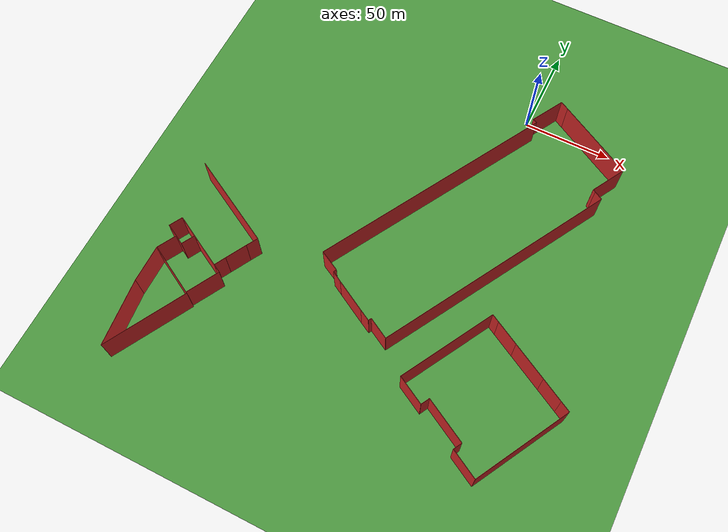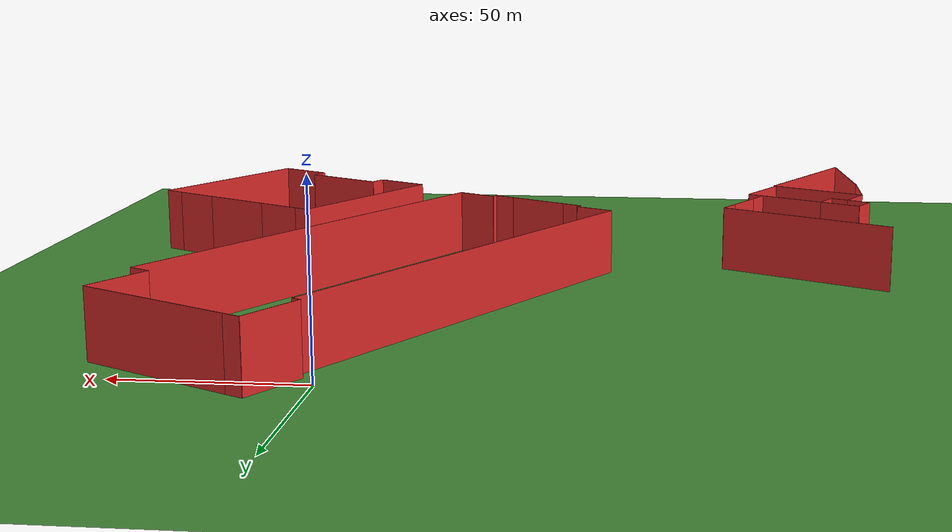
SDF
<sdf version="1.4">
 <world name="default">
  <model name="ground">
   <static>true</static>
   <link name="link">
    <collision name="collision">
     <geometry><plane><size>10000 10000</size><normal>0 0 1</normal></plane></geometry>
     <surface><friction><ode><mu>100</mu><mu2>50</mu2></ode></friction></surface>
    </collision>
    <visual name="visual">
     <pose>0 0 -1 0 0 0</pose>
     <geometry><plane><normal>0 0 1</normal><size>10000 10000</size></plane></geometry>
     <material>
      <script><uri>file://media/materials/scripts/gazebo.material</uri><name>Gazebo/Grass</name></script>
     </material>
    </visual>
   </link>
  </model>
  <include><uri>model://sun</uri></include>
  <model name="office_building_266170727">
   <static>true</static>
   <pose>-140.270672427 -159.703552086 0.0 0 0 0</pose>
   <link name="office_building_266170727_0">
    <collision name="office_building_266170727_0">
     <geometry><box><size>7.49950152143 0.2 20.0</size></box></geometry>
    </collision>
    <visual name="office_building_266170727_0">
     <geometry><box><size>7.49950152143 0.2 20.0</size></box></geometry>
     <material>
      <script><uri>file://media/materials/scripts/gazebo.material</uri><name>Gazebo/Red</name></script>
     </material>
    </visual>
    <pose>0.772717943705 3.97133875865 9.0 0 0 2.63889161114</pose>
   </link>
   <link name="office_building_266170727_1">
    <collision name="office_building_266170727_1">
     <geometry><box><size>11.5570125355 0.2 20.0</size></box></geometry>
    </collision>
    <visual name="office_building_266170727_1">
     <geometry><box><size>11.5570125355 0.2 20.0</size></box></geometry>
     <material>
      <script><uri>file://media/materials/scripts/gazebo.material</uri><name>Gazebo/Red</name></script>
     </material>
    </visual>
    <pose>1.25656510116 -2.88897341572 9.0 0 0 1.06454685184</pose>
   </link>
  </model>
  <model name="office_building_266170728">
   <static>true</static>
   <pose>-141.737771603 -188.416706021 0.0 0 0 0</pose>
  </model>
  <model name="One Rockefeller Plaza">
   <static>true</static>
   <pose>-121.06339997 -146.540523156 0.0 0 0 0</pose>
   <link name="One Rockefeller Plaza_0">
    <collision name="One Rockefeller Plaza_0">
     <geometry><box><size>55.0279759468 0.2 20.0</size></box></geometry>
    </collision>
    <visual name="One Rockefeller Plaza_0">
     <geometry><box><size>55.0279759468 0.2 20.0</size></box></geometry>
     <material>
      <script><uri>file://media/materials/scripts/gazebo.material</uri><name>Gazebo/Red</name></script>
     </material>
    </visual>
    <pose>-0.0934985381491 20.0861033182 9.0 0 0 2.63868104281</pose>
   </link>
   <link name="One Rockefeller Plaza_1">
    <collision name="One Rockefeller Plaza_1">
     <geometry><box><size>7.01766590158 0.2 20.0</size></box></geometry>
    </collision>
    <visual name="One Rockefeller Plaza_1">
     <geometry><box><size>7.01766590158 0.2 20.0</size></box></geometry>
     <material>
      <script><uri>file://media/materials/scripts/gazebo.material</uri><name>Gazebo/Red</name></script>
     </material>
    </visual>
    <pose>22.2847662936 3.77168856766 9.0 0 0 1.05553445254</pose>
   </link>
   <link name="One Rockefeller Plaza_2">
    <collision name="One Rockefeller Plaza_2">
     <geometry><box><size>12.5274177601 0.2 20.0</size></box></geometry>
    </collision>
    <visual name="One Rockefeller Plaza_2">
     <geometry><box><size>12.5274177601 0.2 20.0</size></box></geometry>
     <material>
      <script><uri>file://media/materials/scripts/gazebo.material</uri><name>Gazebo/Red</name></script>
     </material>
    </visual>
    <pose>17.5202348095 -4.76059708165 9.0 0 0 1.06486932209</pose>
   </link>
   <link name="One Rockefeller Plaza_3">
    <collision name="One Rockefeller Plaza_3">
     <geometry><box><size>6.91266604179 0.2 20.0</size></box></geometry>
    </collision>
    <visual name="One Rockefeller Plaza_3">
     <geometry><box><size>6.91266604179 0.2 20.0</size></box></geometry>
     <material>
      <script><uri>file://media/materials/scripts/gazebo.material</uri><name>Gazebo/Red</name></script>
     </material>
    </visual>
    <pose>12.8335464521 -13.2760435348 9.0 0 0 1.07273229349</pose>
   </link>
   <link name="One Rockefeller Plaza_4">
    <collision name="One Rockefeller Plaza_4">
     <geometry><box><size>20.1756515669 0.2 20.0</size></box></geometry>
    </collision>
    <visual name="One Rockefeller Plaza_4">
     <geometry><box><size>20.1756515669 0.2 20.0</size></box></geometry>
     <material>
      <script><uri>file://media/materials/scripts/gazebo.material</uri><name>Gazebo/Red</name></script>
     </material>
    </visual>
    <pose>2.34226689663 -11.452746225 9.0 0 0 -0.502640127612</pose>
   </link>
   <link name="One Rockefeller Plaza_5">
    <collision name="One Rockefeller Plaza_5">
     <geometry><box><size>12.9221664265 0.2 20.0</size></box></geometry>
    </collision>
    <visual name="One Rockefeller Plaza_5">
     <geometry><box><size>12.9221664265 0.2 20.0</size></box></geometry>
     <material>
      <script><uri>file://media/materials/scripts/gazebo.material</uri><name>Gazebo/Red</name></script>
     </material>
    </visual>
    <pose>-12.1577186627 -3.4767334685 9.0 0 0 -0.503298710684</pose>
   </link>
   <link name="One Rockefeller Plaza_6">
    <collision name="One Rockefeller Plaza_6">
     <geometry><box><size>8.0360105564 0.2 20.0</size></box></geometry>
    </collision>
    <visual name="One Rockefeller Plaza_6">
     <geometry><box><size>8.0360105564 0.2 20.0</size></box></geometry>
     <material>
      <script><uri>file://media/materials/scripts/gazebo.material</uri><name>Gazebo/Red</name></script>
     </material>
    </visual>
    <pose>-19.769003168 -3.87276001151 9.0 0 0 1.06367401197</pose>
   </link>
  </model>
  <model name="Associated Press Building">
   <static>true</static>
   <pose>46.6651881996 -161.535641464 0.0 0 0 0</pose>
   <link name="Associated Press Building_0">
    <collision name="Associated Press Building_0">
     <geometry><box><size>56.9724095954 0.2 20.0</size></box></geometry>
    </collision>
    <visual name="Associated Press Building_0">
     <geometry><box><size>56.9724095954 0.2 20.0</size></box></geometry>
     <material>
      <script><uri>file://media/materials/scripts/gazebo.material</uri><name>Gazebo/Red</name></script>
     </material>
    </visual>
    <pose>23.3953563574 -16.2886308355 9.0 0 0 1.06400436703</pose>
   </link>
   <link name="Associated Press Building_1">
    <collision name="Associated Press Building_1">
     <geometry><box><size>17.3436676433 0.2 20.0</size></box></geometry>
    </collision>
    <visual name="Associated Press Building_1">
     <geometry><box><size>17.3436676433 0.2 20.0</size></box></geometry>
     <material>
      <script><uri>file://media/materials/scripts/gazebo.material</uri><name>Gazebo/Red</name></script>
     </material>
    </visual>
    <pose>1.9741404787 -37.0085034013 9.0 0 0 -0.503721360704</pose>
   </link>
   <link name="Associated Press Building_2">
    <collision name="Associated Press Building_2">
     <geometry><box><size>5.12653527383 0.2 20.0</size></box></geometry>
    </collision>
    <visual name="Associated Press Building_2">
     <geometry><box><size>5.12653527383 0.2 20.0</size></box></geometry>
     <material>
      <script><uri>file://media/materials/scripts/gazebo.material</uri><name>Gazebo/Red</name></script>
     </material>
    </visual>
    <pose>-4.37526050518 -30.5822875928 9.0 0 0 -2.07811448029</pose>
   </link>
   <link name="Associated Press Building_3">
    <collision name="Associated Press Building_3">
     <geometry><box><size>26.4579946325 0.2 20.0</size></box></geometry>
    </collision>
    <visual name="Associated Press Building_3">
     <geometry><box><size>26.4579946325 0.2 20.0</size></box></geometry>
     <material>
      <script><uri>file://media/materials/scripts/gazebo.material</uri><name>Gazebo/Red</name></script>
     </material>
    </visual>
    <pose>-14.7166054037 -21.9578623385 9.0 0 0 -0.50359373156</pose>
   </link>
   <link name="Associated Press Building_4">
    <collision name="Associated Press Building_4">
     <geometry><box><size>5.14864710983 0.2 20.0</size></box></geometry>
    </collision>
    <visual name="Associated Press Building_4">
     <geometry><box><size>5.14864710983 0.2 20.0</size></box></geometry>
     <material>
      <script><uri>file://media/materials/scripts/gazebo.material</uri><name>Gazebo/Red</name></script>
     </material>
    </visual>
    <pose>-27.548603754 -17.8269269454 9.0 0 0 1.06586218671</pose>
   </link>
   <link name="Associated Press Building_5">
    <collision name="Associated Press Building_5">
     <geometry><box><size>17.1861757277 0.2 20.0</size></box></geometry>
    </collision>
    <visual name="Associated Press Building_5">
     <geometry><box><size>17.1861757277 0.2 20.0</size></box></geometry>
     <material>
      <script><uri>file://media/materials/scripts/gazebo.material</uri><name>Gazebo/Red</name></script>
     </material>
    </visual>
    <pose>-36.3219282879 -15.9362688912 9.0 0 0 -0.503182204523</pose>
   </link>
   <link name="Associated Press Building_6">
    <collision name="Associated Press Building_6">
     <geometry><box><size>57.0002131066 0.2 20.0</size></box></geometry>
    </collision>
    <visual name="Associated Press Building_6">
     <geometry><box><size>57.0002131066 0.2 20.0</size></box></geometry>
     <material>
      <script><uri>file://media/materials/scripts/gazebo.material</uri><name>Gazebo/Red</name></script>
     </material>
    </visual>
    <pose>-30.017775761 13.1258751468 9.0 0 0 -2.07754458513</pose>
   </link>
   <link name="Associated Press Building_7">
    <collision name="Associated Press Building_7">
     <geometry><box><size>4.76175828055 0.2 20.0</size></box></geometry>
    </collision>
    <visual name="Associated Press Building_7">
     <geometry><box><size>4.76175828055 0.2 20.0</size></box></geometry>
     <material>
      <script><uri>file://media/materials/scripts/gazebo.material</uri><name>Gazebo/Red</name></script>
     </material>
    </visual>
    <pose>-14.1007029444 36.8946550285 9.0 0 0 2.63766986015</pose>
   </link>
   <link name="Associated Press Building_8">
    <collision name="Associated Press Building_8">
     <geometry><box><size>14.2852710823 0.2 20.0</size></box></geometry>
    </collision>
    <visual name="Associated Press Building_8">
     <geometry><box><size>14.2852710823 0.2 20.0</size></box></geometry>
     <material>
      <script><uri>file://media/materials/scripts/gazebo.material</uri><name>Gazebo/Red</name></script>
     </material>
    </visual>
    <pose>-5.76100375379 32.2960955477 9.0 0 0 2.63767095937</pose>
   </link>
   <link name="Associated Press Building_9">
    <collision name="Associated Press Building_9">
     <geometry><box><size>21.8318023266 0.2 20.0</size></box></geometry>
    </collision>
    <visual name="Associated Press Building_9">
     <geometry><box><size>21.8318023266 0.2 20.0</size></box></geometry>
     <material>
      <script><uri>file://media/materials/scripts/gazebo.material</uri><name>Gazebo/Red</name></script>
     </material>
    </visual>
    <pose>10.0566331134 23.5832848595 9.0 0 0 2.63840276131</pose>
   </link>
   <link name="Associated Press Building_10">
    <collision name="Associated Press Building_10">
     <geometry><box><size>13.8801247236 0.2 20.0</size></box></geometry>
    </collision>
    <visual name="Associated Press Building_10">
     <geometry><box><size>13.8801247236 0.2 20.0</size></box></geometry>
     <material>
      <script><uri>file://media/materials/scripts/gazebo.material</uri><name>Gazebo/Red</name></script>
     </material>
    </visual>
    <pose>25.6963642635 14.9673586972 9.0 0 0 2.63751781806</pose>
   </link>
   <link name="Associated Press Building_11">
    <collision name="Associated Press Building_11">
     <geometry><box><size>6.21909529223 0.2 20.0</size></box></geometry>
    </collision>
    <visual name="Associated Press Building_11">
     <geometry><box><size>6.21909529223 0.2 20.0</size></box></geometry>
     <material>
      <script><uri>file://media/materials/scripts/gazebo.material</uri><name>Gazebo/Red</name></script>
     </material>
    </visual>
    <pose>34.4975398909 10.1161787611 9.0 0 0 2.63853014016</pose>
   </link>
  </model>
  <model name="30 Rockefeller Plaza">
   <static>true</static>
   <pose>-6.26016364694 -83.3452475367 0.0 0 0 0</pose>
   <link name="30 Rockefeller Plaza_0">
    <collision name="30 Rockefeller Plaza_0">
     <geometry><box><size>12.4482823457 0.2 20.0</size></box></geometry>
    </collision>
    <visual name="30 Rockefeller Plaza_0">
     <geometry><box><size>12.4482823457 0.2 20.0</size></box></geometry>
     <material>
      <script><uri>file://media/materials/scripts/gazebo.material</uri><name>Gazebo/Red</name></script>
     </material>
    </visual>
    <pose>-51.0484838996 -50.7895727292 9.0 0 0 2.65204286307</pose>
   </link>
   <link name="30 Rockefeller Plaza_1">
    <collision name="30 Rockefeller Plaza_1">
     <geometry><box><size>1.82901620282 0.2 20.0</size></box></geometry>
    </collision>
    <visual name="30 Rockefeller Plaza_1">
     <geometry><box><size>1.82901620282 0.2 20.0</size></box></geometry>
     <material>
      <script><uri>file://media/materials/scripts/gazebo.material</uri><name>Gazebo/Red</name></script>
     </material>
    </visual>
    <pose>-46.0057260187 -54.5122897018 9.0 0 0 1.05592511031</pose>
   </link>
   <link name="30 Rockefeller Plaza_2">
    <collision name="30 Rockefeller Plaza_2">
     <geometry><box><size>6.48143917615 0.2 20.0</size></box></geometry>
    </collision>
    <visual name="30 Rockefeller Plaza_2">
     <geometry><box><size>6.48143917615 0.2 20.0</size></box></geometry>
     <material>
      <script><uri>file://media/materials/scripts/gazebo.material</uri><name>Gazebo/Red</name></script>
     </material>
    </visual>
    <pose>-43.642788456 -56.9169075212 9.0 0 0 2.62215405734</pose>
   </link>
   <link name="30 Rockefeller Plaza_3">
    <collision name="30 Rockefeller Plaza_3">
     <geometry><box><size>19.2327523893 0.2 20.0</size></box></geometry>
    </collision>
    <visual name="30 Rockefeller Plaza_3">
     <geometry><box><size>19.2327523893 0.2 20.0</size></box></geometry>
     <material>
      <script><uri>file://media/materials/scripts/gazebo.material</uri><name>Gazebo/Red</name></script>
     </material>
    </visual>
    <pose>-32.4397758757 -63.2252349427 9.0 0 0 2.63097756929</pose>
   </link>
   <link name="30 Rockefeller Plaza_4">
    <collision name="30 Rockefeller Plaza_4">
     <geometry><box><size>6.57648159721 0.2 20.0</size></box></geometry>
    </collision>
    <visual name="30 Rockefeller Plaza_4">
     <geometry><box><size>6.57648159721 0.2 20.0</size></box></geometry>
     <material>
      <script><uri>file://media/materials/scripts/gazebo.material</uri><name>Gazebo/Red</name></script>
     </material>
    </visual>
    <pose>-21.1589249814 -69.4914380241 9.0 0 0 2.64502738124</pose>
   </link>
   <link name="30 Rockefeller Plaza_5">
    <collision name="30 Rockefeller Plaza_5">
     <geometry><box><size>1.82901091886 0.2 20.0</size></box></geometry>
    </collision>
    <visual name="30 Rockefeller Plaza_5">
     <geometry><box><size>1.82901091886 0.2 20.0</size></box></geometry>
     <material>
      <script><uri>file://media/materials/scripts/gazebo.material</uri><name>Gazebo/Red</name></script>
     </material>
    </visual>
    <pose>-17.8175015844 -70.2620380869 9.0 0 0 -2.08566704631</pose>
   </link>
   <link name="30 Rockefeller Plaza_6">
    <collision name="30 Rockefeller Plaza_6">
     <geometry><box><size>12.7486341534 0.2 20.0</size></box></geometry>
    </collision>
    <visual name="30 Rockefeller Plaza_6">
     <geometry><box><size>12.7486341534 0.2 20.0</size></box></geometry>
     <material>
      <script><uri>file://media/materials/scripts/gazebo.material</uri><name>Gazebo/Red</name></script>
     </material>
    </visual>
    <pose>-11.801807035 -72.5739142794 9.0 0 0 2.63230697993</pose>
   </link>
   <link name="30 Rockefeller Plaza_7">
    <collision name="30 Rockefeller Plaza_7">
     <geometry><box><size>139.764679506 0.2 20.0</size></box></geometry>
    </collision>
    <visual name="30 Rockefeller Plaza_7">
     <geometry><box><size>139.764679506 0.2 20.0</size></box></geometry>
     <material>
      <script><uri>file://media/materials/scripts/gazebo.material</uri><name>Gazebo/Red</name></script>
     </material>
    </visual>
    <pose>28.0608313091 -14.7946364759 9.0 0 0 -2.08378785187</pose>
   </link>
   <link name="30 Rockefeller Plaza_8">
    <collision name="30 Rockefeller Plaza_8">
     <geometry><box><size>5.18590951795 0.2 20.0</size></box></geometry>
    </collision>
    <visual name="30 Rockefeller Plaza_8">
     <geometry><box><size>5.18590951795 0.2 20.0</size></box></geometry>
     <material>
      <script><uri>file://media/materials/scripts/gazebo.material</uri><name>Gazebo/Red</name></script>
     </material>
    </visual>
    <pose>60.1008347938 47.3684636331 9.0 0 0 -0.514503693052</pose>
   </link>
   <link name="30 Rockefeller Plaza_9">
    <collision name="30 Rockefeller Plaza_9">
     <geometry><box><size>1.64814576318 0.2 20.0</size></box></geometry>
    </collision>
    <visual name="30 Rockefeller Plaza_9">
     <geometry><box><size>1.64814576318 0.2 20.0</size></box></geometry>
     <material>
      <script><uri>file://media/materials/scripts/gazebo.material</uri><name>Gazebo/Red</name></script>
     </material>
    </visual>
    <pose>57.1208027118 49.040319212 9.0 0 0 -0.501069947516</pose>
   </link>
   <link name="30 Rockefeller Plaza_10">
    <collision name="30 Rockefeller Plaza_10">
     <geometry><box><size>20.9282358295 0.2 20.0</size></box></geometry>
    </collision>
    <visual name="30 Rockefeller Plaza_10">
     <geometry><box><size>20.9282358295 0.2 20.0</size></box></geometry>
     <material>
      <script><uri>file://media/materials/scripts/gazebo.material</uri><name>Gazebo/Red</name></script>
     </material>
    </visual>
    <pose>61.540768637 58.5493539614 9.0 0 0 -2.08456603754</pose>
   </link>
   <link name="30 Rockefeller Plaza_11">
    <collision name="30 Rockefeller Plaza_11">
     <geometry><box><size>47.7755759661 0.2 20.0</size></box></geometry>
    </collision>
    <visual name="30 Rockefeller Plaza_11">
     <geometry><box><size>47.7755759661 0.2 20.0</size></box></geometry>
     <material>
      <script><uri>file://media/materials/scripts/gazebo.material</uri><name>Gazebo/Red</name></script>
     </material>
    </visual>
    <pose>45.8400080866 79.3319430244 9.0 0 0 -0.510380647915</pose>
   </link>
   <link name="30 Rockefeller Plaza_12">
    <collision name="30 Rockefeller Plaza_12">
     <geometry><box><size>5.32602974121 0.2 20.0</size></box></geometry>
    </collision>
    <visual name="30 Rockefeller Plaza_12">
     <geometry><box><size>5.32602974121 0.2 20.0</size></box></geometry>
     <material>
      <script><uri>file://media/materials/scripts/gazebo.material</uri><name>Gazebo/Red</name></script>
     </material>
    </visual>
    <pose>22.661420839 92.2815844708 9.0 0 0 -0.501504527545</pose>
   </link>
   <link name="30 Rockefeller Plaza_13">
    <collision name="30 Rockefeller Plaza_13">
     <geometry><box><size>20.0421334148 0.2 20.0</size></box></geometry>
    </collision>
    <visual name="30 Rockefeller Plaza_13">
     <geometry><box><size>20.0421334148 0.2 20.0</size></box></geometry>
     <material>
      <script><uri>file://media/materials/scripts/gazebo.material</uri><name>Gazebo/Red</name></script>
     </material>
    </visual>
    <pose>15.3837126702 84.8444589266 9.0 0 0 1.05500593407</pose>
   </link>
   <link name="30 Rockefeller Plaza_14">
    <collision name="30 Rockefeller Plaza_14">
     <geometry><box><size>2.66662337091 0.2 20.0</size></box></geometry>
    </collision>
    <visual name="30 Rockefeller Plaza_14">
     <geometry><box><size>2.66662337091 0.2 20.0</size></box></geometry>
     <material>
      <script><uri>file://media/materials/scripts/gazebo.material</uri><name>Gazebo/Red</name></script>
     </material>
    </visual>
    <pose>11.6197632966 75.5038322401 9.0 0 0 2.65517794569</pose>
   </link>
   <link name="30 Rockefeller Plaza_15">
    <collision name="30 Rockefeller Plaza_15">
     <geometry><box><size>140.975065766 0.2 20.0</size></box></geometry>
    </collision>
    <visual name="30 Rockefeller Plaza_15">
     <geometry><box><size>140.975065766 0.2 20.0</size></box></geometry>
     <material>
      <script><uri>file://media/materials/scripts/gazebo.material</uri><name>Gazebo/Red</name></script>
     </material>
    </visual>
    <pose>-21.8715681044 13.5088797957 9.0 0 0 1.05657157857</pose>
   </link>
  </model>
  <model name="office_building_266170831">
   <static>true</static>
   <pose>-132.098982845 -189.225047382 0.0 0 0 0</pose>
   <link name="office_building_266170831_0">
    <collision name="office_building_266170831_0">
     <geometry><box><size>20.7706241422 0.2 20.0</size></box></geometry>
    </collision>
    <visual name="office_building_266170831_0">
     <geometry><box><size>20.7706241422 0.2 20.0</size></box></geometry>
     <material>
      <script><uri>file://media/materials/scripts/gazebo.material</uri><name>Gazebo/Red</name></script>
     </material>
    </visual>
    <pose>-9.67795711313 11.1935795696 9.0 0 0 -1.56702480331</pose>
   </link>
   <link name="office_building_266170831_1">
    <collision name="office_building_266170831_1">
     <geometry><box><size>30.6531979259 0.2 20.0</size></box></geometry>
    </collision>
    <visual name="office_building_266170831_1">
     <geometry><box><size>30.6531979259 0.2 20.0</size></box></geometry>
     <material>
      <script><uri>file://media/materials/scripts/gazebo.material</uri><name>Gazebo/Red</name></script>
     </material>
    </visual>
    <pose>3.70983694069 14.1881942439 9.0 0 0 2.63841818988</pose>
   </link>
   <link name="office_building_266170831_2">
    <collision name="office_building_266170831_2">
     <geometry><box><size>0.759135725505 0.2 20.0</size></box></geometry>
    </collision>
    <visual name="office_building_266170831_2">
     <geometry><box><size>0.759135725505 0.2 20.0</size></box></geometry>
     <material>
      <script><uri>file://media/materials/scripts/gazebo.material</uri><name>Gazebo/Red</name></script>
     </material>
    </visual>
    <pose>17.4703886037 6.61649069305 9.0 0 0 2.64427608474</pose>
   </link>
   <link name="office_building_266170831_3">
    <collision name="office_building_266170831_3">
     <geometry><box><size>49.0038596386 0.2 20.0</size></box></geometry>
    </collision>
    <visual name="office_building_266170831_3">
     <geometry><box><size>49.0038596386 0.2 20.0</size></box></geometry>
     <material>
      <script><uri>file://media/materials/scripts/gazebo.material</uri><name>Gazebo/Red</name></script>
     </material>
    </visual>
    <pose>5.92895181692 -14.9965356047 9.0 0 0 1.06482560302</pose>
   </link>
   <link name="office_building_266170831_4">
    <collision name="office_building_266170831_4">
     <geometry><box><size>37.4194754928 0.2 20.0</size></box></geometry>
    </collision>
    <visual name="office_building_266170831_4">
     <geometry><box><size>37.4194754928 0.2 20.0</size></box></geometry>
     <material>
      <script><uri>file://media/materials/scripts/gazebo.material</uri><name>Gazebo/Red</name></script>
     </material>
    </visual>
    <pose>-7.79243149053 -17.8100702627 9.0 0 0 -1.47195115209</pose>
   </link>
  </model>
  <model name="office_building_266170832">
   <static>true</static>
   <pose>-126.144637526 -164.58631673 0.0 0 0 0</pose>
   <link name="office_building_266170832_0">
    <collision name="office_building_266170832_0">
     <geometry><box><size>11.5570125355 0.2 20.0</size></box></geometry>
    </collision>
    <visual name="office_building_266170832_0">
     <geometry><box><size>11.5570125355 0.2 20.0</size></box></geometry>
     <material>
      <script><uri>file://media/materials/scripts/gazebo.material</uri><name>Gazebo/Red</name></script>
     </material>
    </visual>
    <pose>-12.8694697994 1.99379122799 9.0 0 0 -2.07704580175</pose>
   </link>
   <link name="office_building_266170832_1">
    <collision name="office_building_266170832_1">
     <geometry><box><size>5.43240842435 0.2 20.0</size></box></geometry>
    </collision>
    <visual name="office_building_266170832_1">
     <geometry><box><size>5.43240842435 0.2 20.0</size></box></geometry>
     <material>
      <script><uri>file://media/materials/scripts/gazebo.material</uri><name>Gazebo/Red</name></script>
     </material>
    </visual>
    <pose>-7.68786923439 5.73781171203 9.0 0 0 2.63845787099</pose>
   </link>
   <link name="office_building_266170832_2">
    <collision name="office_building_266170832_2">
     <geometry><box><size>8.03060649216 0.2 20.0</size></box></geometry>
    </collision>
    <visual name="office_building_266170832_2">
     <geometry><box><size>8.03060649216 0.2 20.0</size></box></geometry>
     <material>
      <script><uri>file://media/materials/scripts/gazebo.material</uri><name>Gazebo/Red</name></script>
     </material>
    </visual>
    <pose>-3.36243287507 7.94044632784 9.0 0 0 -2.07670808613</pose>
   </link>
   <link name="office_building_266170832_3">
    <collision name="office_building_266170832_3">
     <geometry><box><size>20.1756515669 0.2 20.0</size></box></geometry>
    </collision>
    <visual name="office_building_266170832_3">
     <geometry><box><size>20.1756515669 0.2 20.0</size></box></geometry>
     <material>
      <script><uri>file://media/materials/scripts/gazebo.material</uri><name>Gazebo/Red</name></script>
     </material>
    </visual>
    <pose>7.42350445303 6.59304734841 9.0 0 0 2.63895252598</pose>
   </link>
   <link name="office_building_266170832_4">
    <collision name="office_building_266170832_4">
     <geometry><box><size>5.05081212519 0.2 20.0</size></box></geometry>
    </collision>
    <visual name="office_building_266170832_4">
     <geometry><box><size>5.05081212519 0.2 20.0</size></box></geometry>
     <material>
      <script><uri>file://media/materials/scripts/gazebo.material</uri><name>Gazebo/Red</name></script>
     </material>
    </visual>
    <pose>18.4764110531 0.516298852314 9.0 0 0 2.63875362245</pose>
   </link>
   <link name="office_building_266170832_5">
    <collision name="office_building_266170832_5">
     <geometry><box><size>19.6003265149 0.2 20.0</size></box></geometry>
    </collision>
    <visual name="office_building_266170832_5">
     <geometry><box><size>19.6003265149 0.2 20.0</size></box></geometry>
     <material>
      <script><uri>file://media/materials/scripts/gazebo.material</uri><name>Gazebo/Red</name></script>
     </material>
    </visual>
    <pose>15.9358355693 -9.27094618685 9.0 0 0 1.06439787927</pose>
   </link>
   <link name="office_building_266170832_6">
    <collision name="office_building_266170832_6">
     <geometry><box><size>30.6531979259 0.2 20.0</size></box></geometry>
    </collision>
    <visual name="office_building_266170832_6">
     <geometry><box><size>30.6531979259 0.2 20.0</size></box></geometry>
     <material>
      <script><uri>file://media/materials/scripts/gazebo.material</uri><name>Gazebo/Red</name></script>
     </material>
    </visual>
    <pose>-2.24450837863 -10.4505364081 9.0 0 0 -0.503174463712</pose>
   </link>
  </model>
 </world>
</sdf>
